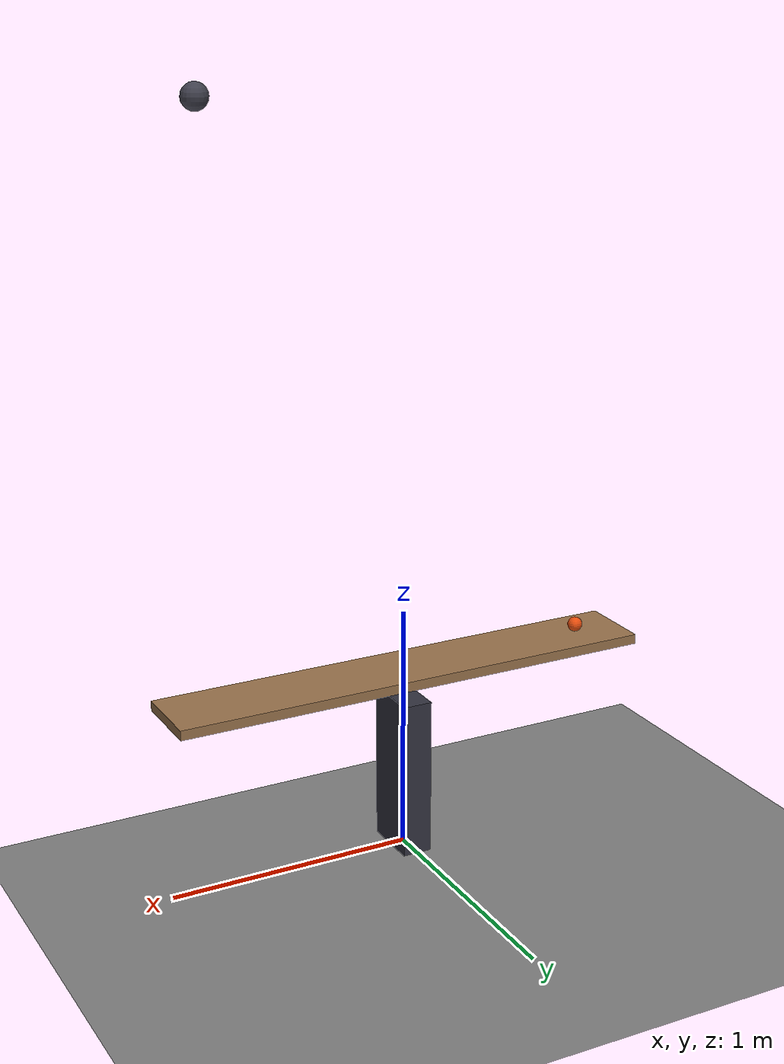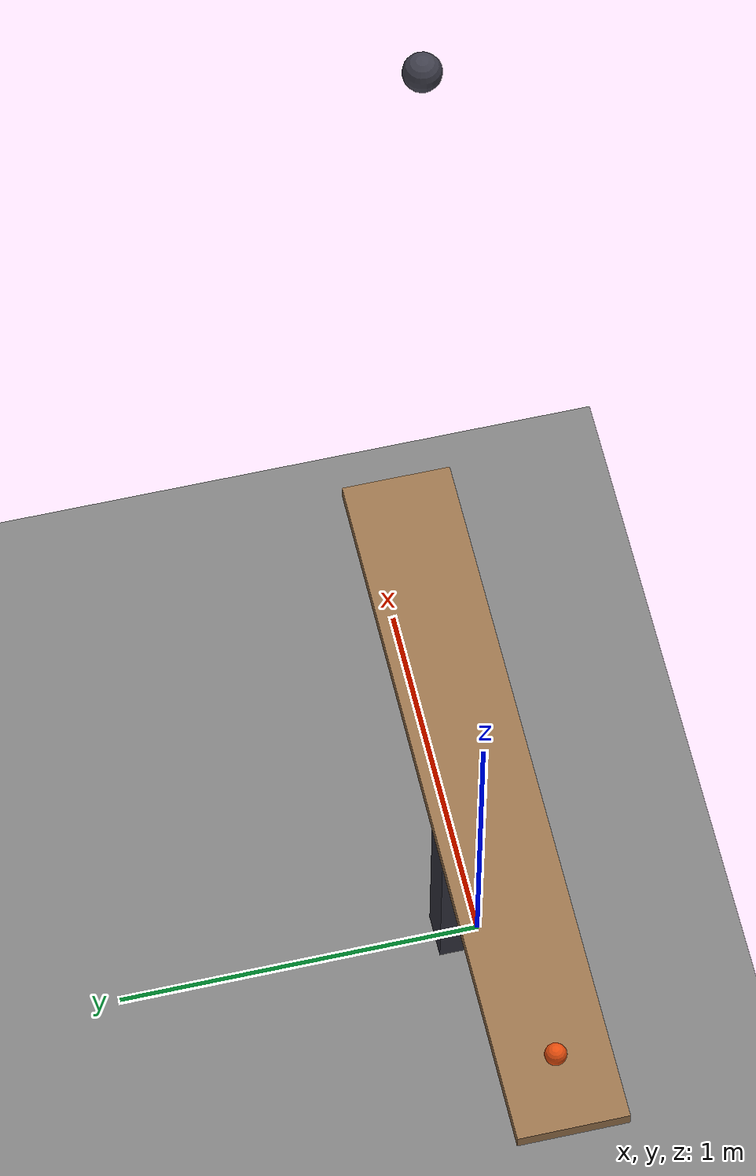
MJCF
<mujoco model="gravity_powered_seesaw">
  <compiler angle="radian"/>
  <option timestep="0.002"/>
  <worldbody>
    <geom name="floor" type="plane" size="8 8 0.1" friction="0.8 0.005 0.002"/>
    <body name="pedestal">
      <geom name="pedestal" type="box" pos="0 0 0.325" size="0.06 0.12 0.325" rgba="0.2 0.2 0.25 1"/>
    </body>
    <body name="pivot">
    </body>
    <body name="seesaw" pos="0 0 0.75">
      <joint name="seesaw_hinge" type="hinge" pos="0 0 0" axis="0 1 0" limited="true" range="0 0.698132" damping="0.002"/>
      <geom name="seesaw" type="box" pos="0 0 0" size="1 0.15 0.02" mass="0.3" friction="0.6 0.005 0.001" solref="0.01 1" rgba="0.6 0.45 0.3 1"/>
    </body>
    <body name="ball" pos="-0.8 0 0.8">
      <freejoint/>
      <geom name="ball" type="sphere" pos="0 0 0" size="0.03" mass="0.1" condim="6" friction="0.6 0.005 0.001" solref="0.01 1" rgba="0.9 0.3 0.05 1"/>
    </body>
    <body name="weight" pos="0.8 0 3">
      <freejoint/>
      <geom name="weight" type="sphere" pos="0 0 0" size="0.05" mass="1" friction="0.6 0.005 0.001" solref="0.01 1" rgba="0.25 0.25 0.3 1"/>
    </body>
  </worldbody>
  <keyframe>
    <key name="start" qpos="0 -0.8 0 0.8 1 0 0 0 0.8 0 3 1 0 0 0" qvel="0 0 0 0 0 0 0 0 0 0 0 0 0"/>
  </keyframe>
</mujoco>
